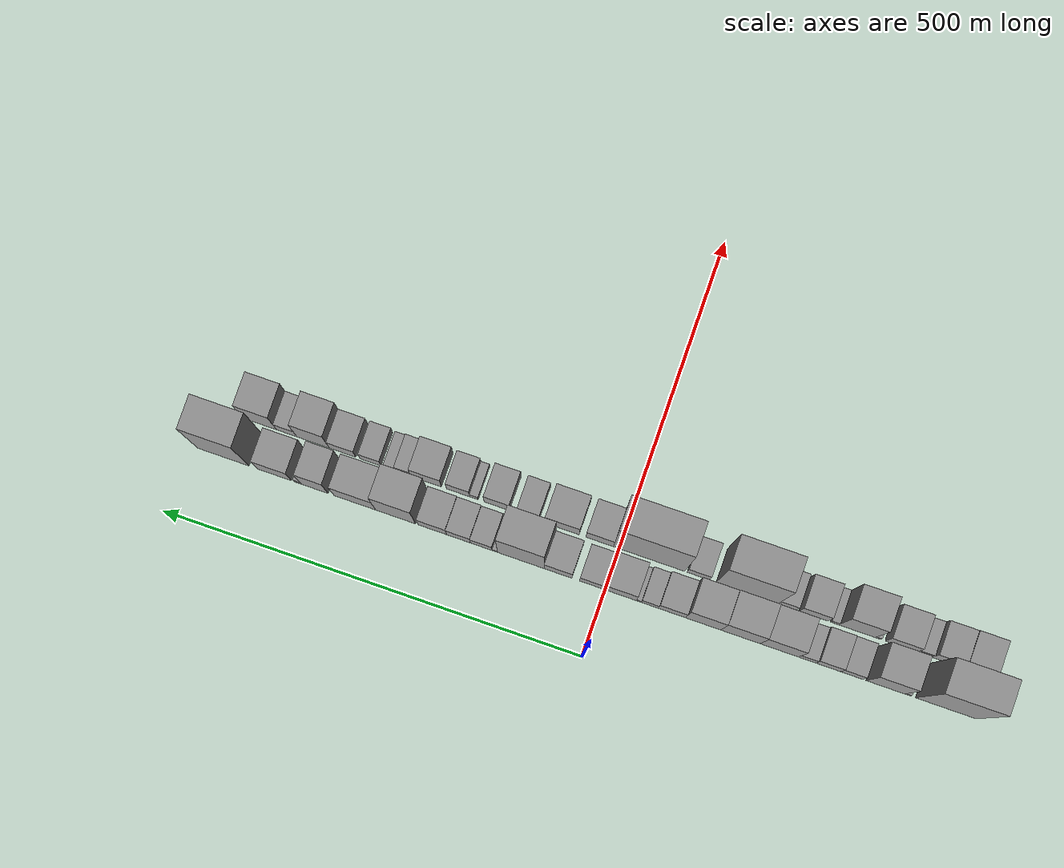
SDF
<sdf version="1.6">
 <world name="default">
  <scene>
   <sky><clouds><speed>12</speed></clouds></sky>
   <ambient>0.4 0.4 0.4 1</ambient>
   <background>0.7 0.7 0.7 1</background>
   <shadows>1</shadows>
  </scene>
  <gravity>0 0 -9.8066</gravity>
  <magnetic_field>6e-06 2.3e-05 -4.2e-05</magnetic_field>
  <physics default="0" name="default_physics" type="ode">
   <ode>
    <solver>
     <type>quick</type>
     <iters>10</iters>
     <sor>1.0</sor>
     <use_dynamic_moi_rescaling>0</use_dynamic_moi_rescaling>
    </solver>
    <constraints>
     <cfm>0</cfm>
     <erp>0.2</erp>
     <contact_max_correcting_vel>100</contact_max_correcting_vel>
     <contact_surface_layer>0.001</contact_surface_layer>
    </constraints>
   </ode>
   <max_step_size>0.004</max_step_size>
   <real_time_factor>1</real_time_factor>
   <real_time_update_rate>250</real_time_update_rate>
  </physics>
  <light name="sun" type="directional">
   <pose>0 0 10 0 0 0</pose>
   <diffuse>0.8 0.8 0.8 1</diffuse>
   <specular>0.2 0.2 0.2 1</specular>
   <attenuation>
    <range>1000</range>
    <constant>0.9</constant>
    <linear>0.01</linear>
    <quadratic>0.001</quadratic>
   </attenuation>
   <direction>-0.5 0.1 -0.9</direction>
  </light>
  <model name="building_1">
   <static>1</static>
   <pose>100.0000 -402.5217 0 0.000000 0.000000 0.000000</pose>
   <link name="link">
    <pose>0 0 108.00 0 0 0</pose>
    <collision name="collision"><geometry><box><size>40.0000 70.9566 216.0000</size></box></geometry></collision>
    <visual name="visual">
     <cast_shadows>0</cast_shadows>
     <geometry><box><size>40.0000 70.9566 216.0000</size></box></geometry>
     <material>
      <script>
       <uri>model://grey_wall/materials/scripts</uri>
       <uri>model://grey_wall/materials/textures</uri>
       <name>vrc/grey_wall</name>
      </script>
     </material>
    </visual>
   </link>
  </model>
  <model name="building_2">
   <static>1</static>
   <pose>100.0000 -357.4717 0 0.000000 0.000000 0.000000</pose>
   <link name="link">
    <pose>0 0 7.50 0 0 0</pose>
    <collision name="collision"><geometry><box><size>40.0000 7.1434 15.0000</size></box></geometry></collision>
    <visual name="visual">
     <cast_shadows>0</cast_shadows>
     <geometry><box><size>40.0000 7.1434 15.0000</size></box></geometry>
     <material>
      <script>
       <uri>model://grey_wall/materials/scripts</uri>
       <uri>model://grey_wall/materials/textures</uri>
       <name>vrc/grey_wall</name>
      </script>
     </material>
    </visual>
   </link>
  </model>
  <model name="building_3">
   <static>1</static>
   <pose>100.0000 -331.2012 0 0.000000 0.000000 0.000000</pose>
   <link name="link">
    <pose>0 0 64.50 0 0 0</pose>
    <collision name="collision"><geometry><box><size>40.0000 45.3975 129.0000</size></box></geometry></collision>
    <visual name="visual">
     <cast_shadows>0</cast_shadows>
     <geometry><box><size>40.0000 45.3975 129.0000</size></box></geometry>
     <material>
      <script>
       <uri>model://grey_wall/materials/scripts</uri>
       <uri>model://grey_wall/materials/textures</uri>
       <name>vrc/grey_wall</name>
      </script>
     </material>
    </visual>
   </link>
  </model>
  <model name="building_4">
   <static>1</static>
   <pose>100.0000 -291.4978 0 0.000000 0.000000 0.000000</pose>
   <link name="link">
    <pose>0 0 24.00 0 0 0</pose>
    <collision name="collision"><geometry><box><size>40.0000 26.0094 48.0000</size></box></geometry></collision>
    <visual name="visual">
     <cast_shadows>0</cast_shadows>
     <geometry><box><size>40.0000 26.0094 48.0000</size></box></geometry>
     <material>
      <script>
       <uri>model://grey_wall/materials/scripts</uri>
       <uri>model://grey_wall/materials/textures</uri>
       <name>vrc/grey_wall</name>
      </script>
     </material>
    </visual>
   </link>
  </model>
  <model name="building_5">
   <static>1</static>
   <pose>100.0000 -263.8061 0 0.000000 0.000000 0.000000</pose>
   <link name="link">
    <pose>0 0 27.00 0 0 0</pose>
    <collision name="collision"><geometry><box><size>40.0000 29.3739 54.0000</size></box></geometry></collision>
    <visual name="visual">
     <cast_shadows>0</cast_shadows>
     <geometry><box><size>40.0000 29.3739 54.0000</size></box></geometry>
     <material>
      <script>
       <uri>model://grey_wall/materials/scripts</uri>
       <uri>model://grey_wall/materials/textures</uri>
       <name>vrc/grey_wall</name>
      </script>
     </material>
    </visual>
   </link>
  </model>
  <model name="building_6">
   <static>1</static>
   <pose>100.0000 -238.8600 0 0.000000 0.000000 0.000000</pose>
   <link name="link">
    <pose>0 0 19.50 0 0 0</pose>
    <collision name="collision"><geometry><box><size>40.0000 20.5184 39.0000</size></box></geometry></collision>
    <visual name="visual">
     <cast_shadows>0</cast_shadows>
     <geometry><box><size>40.0000 20.5184 39.0000</size></box></geometry>
     <material>
      <script>
       <uri>model://grey_wall/materials/scripts</uri>
       <uri>model://grey_wall/materials/textures</uri>
       <name>vrc/grey_wall</name>
      </script>
     </material>
    </visual>
   </link>
  </model>
  <model name="building_7">
   <static>1</static>
   <pose>100.0000 -206.1276 0 0.000000 0.000000 0.000000</pose>
   <link name="link">
    <pose>0 0 57.00 0 0 0</pose>
    <collision name="collision"><geometry><box><size>40.0000 44.9462 114.0000</size></box></geometry></collision>
    <visual name="visual">
     <cast_shadows>0</cast_shadows>
     <geometry><box><size>40.0000 44.9462 114.0000</size></box></geometry>
     <material>
      <script>
       <uri>model://grey_wall/materials/scripts</uri>
       <uri>model://grey_wall/materials/textures</uri>
       <name>vrc/grey_wall</name>
      </script>
     </material>
    </visual>
   </link>
  </model>
  <model name="building_8">
   <static>1</static>
   <pose>100.0000 -160.4039 0 0.000000 0.000000 0.000000</pose>
   <link name="link">
    <pose>0 0 60.00 0 0 0</pose>
    <collision name="collision"><geometry><box><size>40.0000 46.5014 120.0000</size></box></geometry></collision>
    <visual name="visual">
     <cast_shadows>0</cast_shadows>
     <geometry><box><size>40.0000 46.5014 120.0000</size></box></geometry>
     <material>
      <script>
       <uri>model://grey_wall/materials/scripts</uri>
       <uri>model://grey_wall/materials/textures</uri>
       <name>vrc/grey_wall</name>
      </script>
     </material>
    </visual>
   </link>
  </model>
  <model name="building_9">
   <static>1</static>
   <pose>100.0000 -116.1157 0 0.000000 0.000000 0.000000</pose>
   <link name="link">
    <pose>0 0 58.50 0 0 0</pose>
    <collision name="collision"><geometry><box><size>40.0000 42.0751 117.0000</size></box></geometry></collision>
    <visual name="visual">
     <cast_shadows>0</cast_shadows>
     <geometry><box><size>40.0000 42.0751 117.0000</size></box></geometry>
     <material>
      <script>
       <uri>model://grey_wall/materials/scripts</uri>
       <uri>model://grey_wall/materials/textures</uri>
       <name>vrc/grey_wall</name>
      </script>
     </material>
    </visual>
   </link>
  </model>
  <model name="building_10">
   <static>1</static>
   <pose>100.0000 -78.8954 0 0.000000 0.000000 0.000000</pose>
   <link name="link">
    <pose>0 0 28.50 0 0 0</pose>
    <collision name="collision"><geometry><box><size>40.0000 32.3655 57.0000</size></box></geometry></collision>
    <visual name="visual">
     <cast_shadows>0</cast_shadows>
     <geometry><box><size>40.0000 32.3655 57.0000</size></box></geometry>
     <material>
      <script>
       <uri>model://grey_wall/materials/scripts</uri>
       <uri>model://grey_wall/materials/textures</uri>
       <name>vrc/grey_wall</name>
      </script>
     </material>
    </visual>
   </link>
  </model>
  <model name="building_11">
   <static>1</static>
   <pose>100.0000 -52.6776 0 0.000000 0.000000 0.000000</pose>
   <link name="link">
    <pose>0 0 18.00 0 0 0</pose>
    <collision name="collision"><geometry><box><size>40.0000 20.0702 36.0000</size></box></geometry></collision>
    <visual name="visual">
     <cast_shadows>0</cast_shadows>
     <geometry><box><size>40.0000 20.0702 36.0000</size></box></geometry>
     <material>
      <script>
       <uri>model://grey_wall/materials/scripts</uri>
       <uri>model://grey_wall/materials/textures</uri>
       <name>vrc/grey_wall</name>
      </script>
     </material>
    </visual>
   </link>
  </model>
  <model name="building_12">
   <static>1</static>
   <pose>100.0000 -39.6045 0 0.000000 0.000000 0.000000</pose>
   <link name="link">
    <pose>0 0 7.50 0 0 0</pose>
    <collision name="collision"><geometry><box><size>40.0000 6.0758 15.0000</size></box></geometry></collision>
    <visual name="visual">
     <cast_shadows>0</cast_shadows>
     <geometry><box><size>40.0000 6.0758 15.0000</size></box></geometry>
     <material>
      <script>
       <uri>model://grey_wall/materials/scripts</uri>
       <uri>model://grey_wall/materials/textures</uri>
       <name>vrc/grey_wall</name>
      </script>
     </material>
    </visual>
   </link>
  </model>
  <model name="building_13">
   <static>1</static>
   <pose>100.0000 -17.0882 0 0.000000 0.000000 0.000000</pose>
   <link name="link">
    <pose>0 0 34.50 0 0 0</pose>
    <collision name="collision"><geometry><box><size>40.0000 38.9568 69.0000</size></box></geometry></collision>
    <visual name="visual">
     <cast_shadows>0</cast_shadows>
     <geometry><box><size>40.0000 38.9568 69.0000</size></box></geometry>
     <material>
      <script>
       <uri>model://grey_wall/materials/scripts</uri>
       <uri>model://grey_wall/materials/textures</uri>
       <name>vrc/grey_wall</name>
      </script>
     </material>
    </visual>
   </link>
  </model>
  <model name="building_14">
   <static>1</static>
   <pose>100.0000 16.6453 0 0.000000 0.000000 0.000000</pose>
   <link name="link">
    <pose>0 0 25.50 0 0 0</pose>
    <collision name="collision"><geometry><box><size>40.0000 28.5103 51.0000</size></box></geometry></collision>
    <visual name="visual">
     <cast_shadows>0</cast_shadows>
     <geometry><box><size>40.0000 28.5103 51.0000</size></box></geometry>
     <material>
      <script>
       <uri>model://grey_wall/materials/scripts</uri>
       <uri>model://grey_wall/materials/textures</uri>
       <name>vrc/grey_wall</name>
      </script>
     </material>
    </visual>
   </link>
  </model>
  <model name="building_15">
   <static>1</static>
   <pose>100.0000 56.5513 0 0.000000 0.000000 0.000000</pose>
   <link name="link">
    <pose>0 0 30.00 0 0 0</pose>
    <collision name="collision"><geometry><box><size>40.0000 33.3017 60.0000</size></box></geometry></collision>
    <visual name="visual">
     <cast_shadows>0</cast_shadows>
     <geometry><box><size>40.0000 33.3017 60.0000</size></box></geometry>
     <material>
      <script>
       <uri>model://grey_wall/materials/scripts</uri>
       <uri>model://grey_wall/materials/textures</uri>
       <name>vrc/grey_wall</name>
      </script>
     </material>
    </visual>
   </link>
  </model>
  <model name="building_16">
   <static>1</static>
   <pose>100.0000 100.8436 0 0.000000 0.000000 0.000000</pose>
   <link name="link">
    <pose>0 0 87.00 0 0 0</pose>
    <collision name="collision"><geometry><box><size>40.0000 55.2830 174.0000</size></box></geometry></collision>
    <visual name="visual">
     <cast_shadows>0</cast_shadows>
     <geometry><box><size>40.0000 55.2830 174.0000</size></box></geometry>
     <material>
      <script>
       <uri>model://grey_wall/materials/scripts</uri>
       <uri>model://grey_wall/materials/textures</uri>
       <name>vrc/grey_wall</name>
      </script>
     </material>
    </visual>
   </link>
  </model>
  <model name="building_17">
   <static>1</static>
   <pose>100.0000 131.7493 0 0.000000 0.000000 0.000000</pose>
   <link name="link">
    <pose>0 0 7.50 0 0 0</pose>
    <collision name="collision"><geometry><box><size>40.0000 6.5283 15.0000</size></box></geometry></collision>
    <visual name="visual">
     <cast_shadows>0</cast_shadows>
     <geometry><box><size>40.0000 6.5283 15.0000</size></box></geometry>
     <material>
      <script>
       <uri>model://grey_wall/materials/scripts</uri>
       <uri>model://grey_wall/materials/textures</uri>
       <name>vrc/grey_wall</name>
      </script>
     </material>
    </visual>
   </link>
  </model>
  <model name="building_18">
   <static>1</static>
   <pose>100.0000 147.9498 0 0.000000 0.000000 0.000000</pose>
   <link name="link">
    <pose>0 0 22.50 0 0 0</pose>
    <collision name="collision"><geometry><box><size>40.0000 25.8728 45.0000</size></box></geometry></collision>
    <visual name="visual">
     <cast_shadows>0</cast_shadows>
     <geometry><box><size>40.0000 25.8728 45.0000</size></box></geometry>
     <material>
      <script>
       <uri>model://grey_wall/materials/scripts</uri>
       <uri>model://grey_wall/materials/textures</uri>
       <name>vrc/grey_wall</name>
      </script>
     </material>
    </visual>
   </link>
  </model>
  <model name="building_19">
   <static>1</static>
   <pose>100.0000 175.1224 0 0.000000 0.000000 0.000000</pose>
   <link name="link">
    <pose>0 0 27.00 0 0 0</pose>
    <collision name="collision"><geometry><box><size>40.0000 28.4724 54.0000</size></box></geometry></collision>
    <visual name="visual">
     <cast_shadows>0</cast_shadows>
     <geometry><box><size>40.0000 28.4724 54.0000</size></box></geometry>
     <material>
      <script>
       <uri>model://grey_wall/materials/scripts</uri>
       <uri>model://grey_wall/materials/textures</uri>
       <name>vrc/grey_wall</name>
      </script>
     </material>
    </visual>
   </link>
  </model>
  <model name="building_20">
   <static>1</static>
   <pose>100.0000 206.3816 0 0.000000 0.000000 0.000000</pose>
   <link name="link">
    <pose>0 0 30.00 0 0 0</pose>
    <collision name="collision"><geometry><box><size>40.0000 34.0460 60.0000</size></box></geometry></collision>
    <visual name="visual">
     <cast_shadows>0</cast_shadows>
     <geometry><box><size>40.0000 34.0460 60.0000</size></box></geometry>
     <material>
      <script>
       <uri>model://grey_wall/materials/scripts</uri>
       <uri>model://grey_wall/materials/textures</uri>
       <name>vrc/grey_wall</name>
      </script>
     </material>
    </visual>
   </link>
  </model>
  <model name="building_21">
   <static>1</static>
   <pose>100.0000 250.3081 0 0.000000 0.000000 0.000000</pose>
   <link name="link">
    <pose>0 0 69.00 0 0 0</pose>
    <collision name="collision"><geometry><box><size>40.0000 47.8070 138.0000</size></box></geometry></collision>
    <visual name="visual">
     <cast_shadows>0</cast_shadows>
     <geometry><box><size>40.0000 47.8070 138.0000</size></box></geometry>
     <material>
      <script>
       <uri>model://grey_wall/materials/scripts</uri>
       <uri>model://grey_wall/materials/textures</uri>
       <name>vrc/grey_wall</name>
      </script>
     </material>
    </visual>
   </link>
  </model>
  <model name="building_22">
   <static>1</static>
   <pose>100.0000 299.1764 0 0.000000 0.000000 0.000000</pose>
   <link name="link">
    <pose>0 0 43.50 0 0 0</pose>
    <collision name="collision"><geometry><box><size>40.0000 49.9296 87.0000</size></box></geometry></collision>
    <visual name="visual">
     <cast_shadows>0</cast_shadows>
     <geometry><box><size>40.0000 49.9296 87.0000</size></box></geometry>
     <material>
      <script>
       <uri>model://grey_wall/materials/scripts</uri>
       <uri>model://grey_wall/materials/textures</uri>
       <name>vrc/grey_wall</name>
      </script>
     </material>
    </visual>
   </link>
  </model>
  <model name="building_23">
   <static>1</static>
   <pose>100.0000 347.2928 0 0.000000 0.000000 0.000000</pose>
   <link name="link">
    <pose>0 0 49.50 0 0 0</pose>
    <collision name="collision"><geometry><box><size>40.0000 32.3032 99.0000</size></box></geometry></collision>
    <visual name="visual">
     <cast_shadows>0</cast_shadows>
     <geometry><box><size>40.0000 32.3032 99.0000</size></box></geometry>
     <material>
      <script>
       <uri>model://grey_wall/materials/scripts</uri>
       <uri>model://grey_wall/materials/textures</uri>
       <name>vrc/grey_wall</name>
      </script>
     </material>
    </visual>
   </link>
  </model>
  <model name="building_24">
   <static>1</static>
   <pose>100.0000 367.8692 0 0.000000 0.000000 0.000000</pose>
   <link name="link">
    <pose>0 0 9.00 0 0 0</pose>
    <collision name="collision"><geometry><box><size>40.0000 8.8497 18.0000</size></box></geometry></collision>
    <visual name="visual">
     <cast_shadows>0</cast_shadows>
     <geometry><box><size>40.0000 8.8497 18.0000</size></box></geometry>
     <material>
      <script>
       <uri>model://grey_wall/materials/scripts</uri>
       <uri>model://grey_wall/materials/textures</uri>
       <name>vrc/grey_wall</name>
      </script>
     </material>
    </visual>
   </link>
  </model>
  <model name="building_25">
   <static>1</static>
   <pose>100.0000 395.7719 0 0.000000 0.000000 0.000000</pose>
   <link name="link">
    <pose>0 0 37.50 0 0 0</pose>
    <collision name="collision"><geometry><box><size>40.0000 40.9558 75.0000</size></box></geometry></collision>
    <visual name="visual">
     <cast_shadows>0</cast_shadows>
     <geometry><box><size>40.0000 40.9558 75.0000</size></box></geometry>
     <material>
      <script>
       <uri>model://grey_wall/materials/scripts</uri>
       <uri>model://grey_wall/materials/textures</uri>
       <name>vrc/grey_wall</name>
      </script>
     </material>
    </visual>
   </link>
  </model>
  <model name="building_26">
   <static>1</static>
   <pose>100.0000 457.0901 0 0.000000 0.000000 0.000000</pose>
   <link name="link">
    <pose>0 0 90.00 0 0 0</pose>
    <collision name="collision"><geometry><box><size>40.0000 61.6807 180.0000</size></box></geometry></collision>
    <visual name="visual">
     <cast_shadows>0</cast_shadows>
     <geometry><box><size>40.0000 61.6807 180.0000</size></box></geometry>
     <material>
      <script>
       <uri>model://grey_wall/materials/scripts</uri>
       <uri>model://grey_wall/materials/textures</uri>
       <name>vrc/grey_wall</name>
      </script>
     </material>
    </visual>
   </link>
  </model>
  <model name="building_27">
   <static>1</static>
   <pose>149.0000 -420.4226 0 0.000000 0.000000 0.000000</pose>
   <link name="link">
    <pose>0 0 33.00 0 0 0</pose>
    <collision name="collision"><geometry><box><size>40.0000 35.1548 66.0000</size></box></geometry></collision>
    <visual name="visual">
     <cast_shadows>0</cast_shadows>
     <geometry><box><size>40.0000 35.1548 66.0000</size></box></geometry>
     <material>
      <script>
       <uri>model://grey_wall/materials/scripts</uri>
       <uri>model://grey_wall/materials/textures</uri>
       <name>vrc/grey_wall</name>
      </script>
     </material>
    </visual>
   </link>
  </model>
  <model name="building_28">
   <static>1</static>
   <pose>149.0000 -386.1287 0 0.000000 0.000000 0.000000</pose>
   <link name="link">
    <pose>0 0 31.50 0 0 0</pose>
    <collision name="collision"><geometry><box><size>40.0000 33.4330 63.0000</size></box></geometry></collision>
    <visual name="visual">
     <cast_shadows>0</cast_shadows>
     <geometry><box><size>40.0000 33.4330 63.0000</size></box></geometry>
     <material>
      <script>
       <uri>model://grey_wall/materials/scripts</uri>
       <uri>model://grey_wall/materials/textures</uri>
       <name>vrc/grey_wall</name>
      </script>
     </material>
    </visual>
   </link>
  </model>
  <model name="building_29">
   <static>1</static>
   <pose>149.0000 -360.4184 0 0.000000 0.000000 0.000000</pose>
   <link name="link">
    <pose>0 0 16.50 0 0 0</pose>
    <collision name="collision"><geometry><box><size>40.0000 17.9875 33.0000</size></box></geometry></collision>
    <visual name="visual">
     <cast_shadows>0</cast_shadows>
     <geometry><box><size>40.0000 17.9875 33.0000</size></box></geometry>
     <material>
      <script>
       <uri>model://grey_wall/materials/scripts</uri>
       <uri>model://grey_wall/materials/textures</uri>
       <name>vrc/grey_wall</name>
      </script>
     </material>
    </visual>
   </link>
  </model>
  <model name="building_30">
   <static>1</static>
   <pose>149.0000 -333.1810 0 0.000000 0.000000 0.000000</pose>
   <link name="link">
    <pose>0 0 33.00 0 0 0</pose>
    <collision name="collision"><geometry><box><size>40.0000 36.4873 66.0000</size></box></geometry></collision>
    <visual name="visual">
     <cast_shadows>0</cast_shadows>
     <geometry><box><size>40.0000 36.4873 66.0000</size></box></geometry>
     <material>
      <script>
       <uri>model://grey_wall/materials/scripts</uri>
       <uri>model://grey_wall/materials/textures</uri>
       <name>vrc/grey_wall</name>
      </script>
     </material>
    </visual>
   </link>
  </model>
  <model name="building_31">
   <static>1</static>
   <pose>149.0000 -306.4636 0 0.000000 0.000000 0.000000</pose>
   <link name="link">
    <pose>0 0 7.50 0 0 0</pose>
    <collision name="collision"><geometry><box><size>40.0000 6.9475 15.0000</size></box></geometry></collision>
    <visual name="visual">
     <cast_shadows>0</cast_shadows>
     <geometry><box><size>40.0000 6.9475 15.0000</size></box></geometry>
     <material>
      <script>
       <uri>model://grey_wall/materials/scripts</uri>
       <uri>model://grey_wall/materials/textures</uri>
       <name>vrc/grey_wall</name>
      </script>
     </material>
    </visual>
   </link>
  </model>
  <model name="building_32">
   <static>1</static>
   <pose>149.0000 -281.4693 0 0.000000 0.000000 0.000000</pose>
   <link name="link">
    <pose>0 0 66.00 0 0 0</pose>
    <collision name="collision"><geometry><box><size>40.0000 43.0411 132.0000</size></box></geometry></collision>
    <visual name="visual">
     <cast_shadows>0</cast_shadows>
     <geometry><box><size>40.0000 43.0411 132.0000</size></box></geometry>
     <material>
      <script>
       <uri>model://grey_wall/materials/scripts</uri>
       <uri>model://grey_wall/materials/textures</uri>
       <name>vrc/grey_wall</name>
      </script>
     </material>
    </visual>
   </link>
  </model>
  <model name="building_33">
   <static>1</static>
   <pose>149.0000 -255.1361 0 0.000000 0.000000 0.000000</pose>
   <link name="link">
    <pose>0 0 10.50 0 0 0</pose>
    <collision name="collision"><geometry><box><size>40.0000 9.6254 21.0000</size></box></geometry></collision>
    <visual name="visual">
     <cast_shadows>0</cast_shadows>
     <geometry><box><size>40.0000 9.6254 21.0000</size></box></geometry>
     <material>
      <script>
       <uri>model://grey_wall/materials/scripts</uri>
       <uri>model://grey_wall/materials/textures</uri>
       <name>vrc/grey_wall</name>
      </script>
     </material>
    </visual>
   </link>
  </model>
  <model name="building_34">
   <static>1</static>
   <pose>149.0000 -230.2014 0 0.000000 0.000000 0.000000</pose>
   <link name="link">
    <pose>0 0 30.00 0 0 0</pose>
    <collision name="collision"><geometry><box><size>40.0000 34.2441 60.0000</size></box></geometry></collision>
    <visual name="visual">
     <cast_shadows>0</cast_shadows>
     <geometry><box><size>40.0000 34.2441 60.0000</size></box></geometry>
     <material>
      <script>
       <uri>model://grey_wall/materials/scripts</uri>
       <uri>model://grey_wall/materials/textures</uri>
       <name>vrc/grey_wall</name>
      </script>
     </material>
    </visual>
   </link>
  </model>
  <model name="building_35">
   <static>1</static>
   <pose>149.0000 -199.1306 0 0.000000 0.000000 0.000000</pose>
   <link name="link">
    <pose>0 0 21.00 0 0 0</pose>
    <collision name="collision"><geometry><box><size>40.0000 21.8975 42.0000</size></box></geometry></collision>
    <visual name="visual">
     <cast_shadows>0</cast_shadows>
     <geometry><box><size>40.0000 21.8975 42.0000</size></box></geometry>
     <material>
      <script>
       <uri>model://grey_wall/materials/scripts</uri>
       <uri>model://grey_wall/materials/textures</uri>
       <name>vrc/grey_wall</name>
      </script>
     </material>
    </visual>
   </link>
  </model>
  <model name="building_36">
   <static>1</static>
   <pose>149.0000 -151.5347 0 0.000000 0.000000 0.000000</pose>
   <link name="link">
    <pose>0 0 103.50 0 0 0</pose>
    <collision name="collision"><geometry><box><size>40.0000 73.2943 207.0000</size></box></geometry></collision>
    <visual name="visual">
     <cast_shadows>0</cast_shadows>
     <geometry><box><size>40.0000 73.2943 207.0000</size></box></geometry>
     <material>
      <script>
       <uri>model://grey_wall/materials/scripts</uri>
       <uri>model://grey_wall/materials/textures</uri>
       <name>vrc/grey_wall</name>
      </script>
     </material>
    </visual>
   </link>
  </model>
  <model name="building_37">
   <static>1</static>
   <pose>149.0000 -93.6574 0 0.000000 0.000000 0.000000</pose>
   <link name="link">
    <pose>0 0 22.50 0 0 0</pose>
    <collision name="collision"><geometry><box><size>40.0000 26.4603 45.0000</size></box></geometry></collision>
    <visual name="visual">
     <cast_shadows>0</cast_shadows>
     <geometry><box><size>40.0000 26.4603 45.0000</size></box></geometry>
     <material>
      <script>
       <uri>model://grey_wall/materials/scripts</uri>
       <uri>model://grey_wall/materials/textures</uri>
       <name>vrc/grey_wall</name>
      </script>
     </material>
    </visual>
   </link>
  </model>
  <model name="building_38">
   <static>1</static>
   <pose>149.0000 -35.0338 0 0.000000 0.000000 0.000000</pose>
   <link name="link">
    <pose>0 0 109.50 0 0 0</pose>
    <collision name="collision"><geometry><box><size>40.0000 84.7870 219.0000</size></box></geometry></collision>
    <visual name="visual">
     <cast_shadows>0</cast_shadows>
     <geometry><box><size>40.0000 84.7870 219.0000</size></box></geometry>
     <material>
      <script>
       <uri>model://grey_wall/materials/scripts</uri>
       <uri>model://grey_wall/materials/textures</uri>
       <name>vrc/grey_wall</name>
      </script>
     </material>
    </visual>
   </link>
  </model>
  <model name="building_39">
   <static>1</static>
   <pose>149.0000 23.7741 0 0.000000 0.000000 0.000000</pose>
   <link name="link">
    <pose>0 0 31.50 0 0 0</pose>
    <collision name="collision"><geometry><box><size>40.0000 32.8287 63.0000</size></box></geometry></collision>
    <visual name="visual">
     <cast_shadows>0</cast_shadows>
     <geometry><box><size>40.0000 32.8287 63.0000</size></box></geometry>
     <material>
      <script>
       <uri>model://grey_wall/materials/scripts</uri>
       <uri>model://grey_wall/materials/textures</uri>
       <name>vrc/grey_wall</name>
      </script>
     </material>
    </visual>
   </link>
  </model>
  <model name="building_40">
   <static>1</static>
   <pose>149.0000 68.7237 0 0.000000 0.000000 0.000000</pose>
   <link name="link">
    <pose>0 0 34.50 0 0 0</pose>
    <collision name="collision"><geometry><box><size>40.0000 41.0706 69.0000</size></box></geometry></collision>
    <visual name="visual">
     <cast_shadows>0</cast_shadows>
     <geometry><box><size>40.0000 41.0706 69.0000</size></box></geometry>
     <material>
      <script>
       <uri>model://grey_wall/materials/scripts</uri>
       <uri>model://grey_wall/materials/textures</uri>
       <name>vrc/grey_wall</name>
      </script>
     </material>
    </visual>
   </link>
  </model>
  <model name="building_41">
   <static>1</static>
   <pose>149.0000 109.4013 0 0.000000 0.000000 0.000000</pose>
   <link name="link">
    <pose>0 0 25.50 0 0 0</pose>
    <collision name="collision"><geometry><box><size>40.0000 26.2847 51.0000</size></box></geometry></collision>
    <visual name="visual">
     <cast_shadows>0</cast_shadows>
     <geometry><box><size>40.0000 26.2847 51.0000</size></box></geometry>
     <material>
      <script>
       <uri>model://grey_wall/materials/scripts</uri>
       <uri>model://grey_wall/materials/textures</uri>
       <name>vrc/grey_wall</name>
      </script>
     </material>
    </visual>
   </link>
  </model>
  <model name="building_42">
   <static>1</static>
   <pose>149.0000 146.6737 0 0.000000 0.000000 0.000000</pose>
   <link name="link">
    <pose>0 0 30.00 0 0 0</pose>
    <collision name="collision"><geometry><box><size>40.0000 30.2600 60.0000</size></box></geometry></collision>
    <visual name="visual">
     <cast_shadows>0</cast_shadows>
     <geometry><box><size>40.0000 30.2600 60.0000</size></box></geometry>
     <material>
      <script>
       <uri>model://grey_wall/materials/scripts</uri>
       <uri>model://grey_wall/materials/textures</uri>
       <name>vrc/grey_wall</name>
      </script>
     </material>
    </visual>
   </link>
  </model>
  <model name="building_43">
   <static>1</static>
   <pose>149.0000 173.9900 0 0.000000 0.000000 0.000000</pose>
   <link name="link">
    <pose>0 0 12.00 0 0 0</pose>
    <collision name="collision"><geometry><box><size>40.0000 10.3725 24.0000</size></box></geometry></collision>
    <visual name="visual">
     <cast_shadows>0</cast_shadows>
     <geometry><box><size>40.0000 10.3725 24.0000</size></box></geometry>
     <material>
      <script>
       <uri>model://grey_wall/materials/scripts</uri>
       <uri>model://grey_wall/materials/textures</uri>
       <name>vrc/grey_wall</name>
      </script>
     </material>
    </visual>
   </link>
  </model>
  <model name="building_44">
   <static>1</static>
   <pose>149.0000 192.9733 0 0.000000 0.000000 0.000000</pose>
   <link name="link">
    <pose>0 0 27.00 0 0 0</pose>
    <collision name="collision"><geometry><box><size>40.0000 27.5943 54.0000</size></box></geometry></collision>
    <visual name="visual">
     <cast_shadows>0</cast_shadows>
     <geometry><box><size>40.0000 27.5943 54.0000</size></box></geometry>
     <material>
      <script>
       <uri>model://grey_wall/materials/scripts</uri>
       <uri>model://grey_wall/materials/textures</uri>
       <name>vrc/grey_wall</name>
      </script>
     </material>
    </visual>
   </link>
  </model>
  <model name="building_45">
   <static>1</static>
   <pose>149.0000 231.2498 0 0.000000 0.000000 0.000000</pose>
   <link name="link">
    <pose>0 0 34.50 0 0 0</pose>
    <collision name="collision"><geometry><box><size>40.0000 36.9586 69.0000</size></box></geometry></collision>
    <visual name="visual">
     <cast_shadows>0</cast_shadows>
     <geometry><box><size>40.0000 36.9586 69.0000</size></box></geometry>
     <material>
      <script>
       <uri>model://grey_wall/materials/scripts</uri>
       <uri>model://grey_wall/materials/textures</uri>
       <name>vrc/grey_wall</name>
      </script>
     </material>
    </visual>
   </link>
  </model>
  <model name="building_46">
   <static>1</static>
   <pose>149.0000 259.1879 0 0.000000 0.000000 0.000000</pose>
   <link name="link">
    <pose>0 0 18.00 0 0 0</pose>
    <collision name="collision"><geometry><box><size>40.0000 18.9176 36.0000</size></box></geometry></collision>
    <visual name="visual">
     <cast_shadows>0</cast_shadows>
     <geometry><box><size>40.0000 18.9176 36.0000</size></box></geometry>
     <material>
      <script>
       <uri>model://grey_wall/materials/scripts</uri>
       <uri>model://grey_wall/materials/textures</uri>
       <name>vrc/grey_wall</name>
      </script>
     </material>
    </visual>
   </link>
  </model>
  <model name="building_47">
   <static>1</static>
   <pose>149.0000 274.9735 0 0.000000 0.000000 0.000000</pose>
   <link name="link">
    <pose>0 0 13.50 0 0 0</pose>
    <collision name="collision"><geometry><box><size>40.0000 12.6537 27.0000</size></box></geometry></collision>
    <visual name="visual">
     <cast_shadows>0</cast_shadows>
     <geometry><box><size>40.0000 12.6537 27.0000</size></box></geometry>
     <material>
      <script>
       <uri>model://grey_wall/materials/scripts</uri>
       <uri>model://grey_wall/materials/textures</uri>
       <name>vrc/grey_wall</name>
      </script>
     </material>
    </visual>
   </link>
  </model>
  <model name="building_48">
   <static>1</static>
   <pose>149.0000 297.8058 0 0.000000 0.000000 0.000000</pose>
   <link name="link">
    <pose>0 0 22.50 0 0 0</pose>
    <collision name="collision"><geometry><box><size>40.0000 25.0109 45.0000</size></box></geometry></collision>
    <visual name="visual">
     <cast_shadows>0</cast_shadows>
     <geometry><box><size>40.0000 25.0109 45.0000</size></box></geometry>
     <material>
      <script>
       <uri>model://grey_wall/materials/scripts</uri>
       <uri>model://grey_wall/materials/textures</uri>
       <name>vrc/grey_wall</name>
      </script>
     </material>
    </visual>
   </link>
  </model>
  <model name="building_49">
   <static>1</static>
   <pose>149.0000 331.3076 0 0.000000 0.000000 0.000000</pose>
   <link name="link">
    <pose>0 0 27.00 0 0 0</pose>
    <collision name="collision"><geometry><box><size>40.0000 31.9926 54.0000</size></box></geometry></collision>
    <visual name="visual">
     <cast_shadows>0</cast_shadows>
     <geometry><box><size>40.0000 31.9926 54.0000</size></box></geometry>
     <material>
      <script>
       <uri>model://grey_wall/materials/scripts</uri>
       <uri>model://grey_wall/materials/textures</uri>
       <name>vrc/grey_wall</name>
      </script>
     </material>
    </visual>
   </link>
  </model>
  <model name="building_50">
   <static>1</static>
   <pose>149.0000 366.8159 0 0.000000 0.000000 0.000000</pose>
   <link name="link">
    <pose>0 0 54.00 0 0 0</pose>
    <collision name="collision"><geometry><box><size>40.0000 39.0240 108.0000</size></box></geometry></collision>
    <visual name="visual">
     <cast_shadows>0</cast_shadows>
     <geometry><box><size>40.0000 39.0240 108.0000</size></box></geometry>
     <material>
      <script>
       <uri>model://grey_wall/materials/scripts</uri>
       <uri>model://grey_wall/materials/textures</uri>
       <name>vrc/grey_wall</name>
      </script>
     </material>
    </visual>
   </link>
  </model>
  <model name="building_51">
   <static>1</static>
   <pose>149.0000 398.4611 0 0.000000 0.000000 0.000000</pose>
   <link name="link">
    <pose>0 0 24.00 0 0 0</pose>
    <collision name="collision"><geometry><box><size>40.0000 24.2664 48.0000</size></box></geometry></collision>
    <visual name="visual">
     <cast_shadows>0</cast_shadows>
     <geometry><box><size>40.0000 24.2664 48.0000</size></box></geometry>
     <material>
      <script>
       <uri>model://grey_wall/materials/scripts</uri>
       <uri>model://grey_wall/materials/textures</uri>
       <name>vrc/grey_wall</name>
      </script>
     </material>
    </visual>
   </link>
  </model>
  <model name="building_52">
   <static>1</static>
   <pose>149.0000 430.9039 0 0.000000 0.000000 0.000000</pose>
   <link name="link">
    <pose>0 0 54.00 0 0 0</pose>
    <collision name="collision"><geometry><box><size>40.0000 40.6193 108.0000</size></box></geometry></collision>
    <visual name="visual">
     <cast_shadows>0</cast_shadows>
     <geometry><box><size>40.0000 40.6193 108.0000</size></box></geometry>
     <material>
      <script>
       <uri>model://grey_wall/materials/scripts</uri>
       <uri>model://grey_wall/materials/textures</uri>
       <name>vrc/grey_wall</name>
      </script>
     </material>
    </visual>
   </link>
  </model>
 </world>
</sdf>
